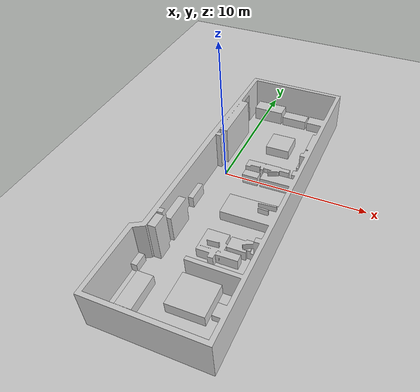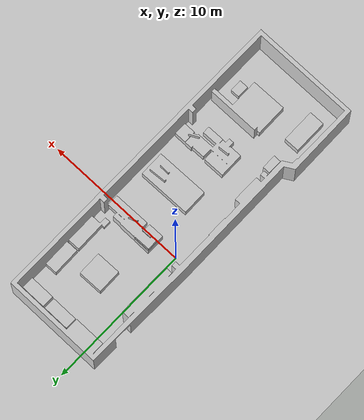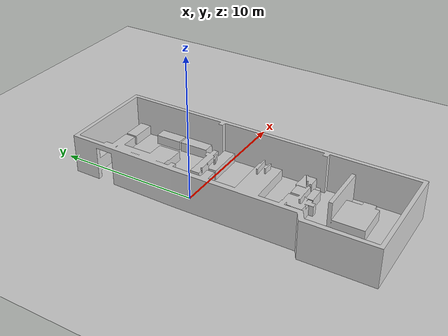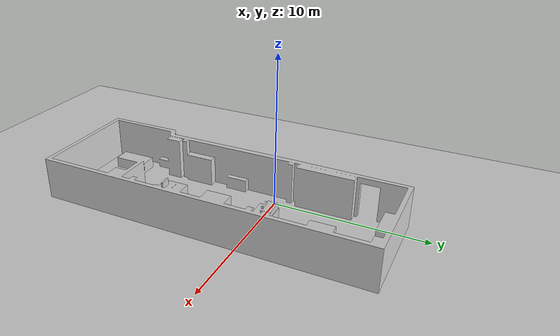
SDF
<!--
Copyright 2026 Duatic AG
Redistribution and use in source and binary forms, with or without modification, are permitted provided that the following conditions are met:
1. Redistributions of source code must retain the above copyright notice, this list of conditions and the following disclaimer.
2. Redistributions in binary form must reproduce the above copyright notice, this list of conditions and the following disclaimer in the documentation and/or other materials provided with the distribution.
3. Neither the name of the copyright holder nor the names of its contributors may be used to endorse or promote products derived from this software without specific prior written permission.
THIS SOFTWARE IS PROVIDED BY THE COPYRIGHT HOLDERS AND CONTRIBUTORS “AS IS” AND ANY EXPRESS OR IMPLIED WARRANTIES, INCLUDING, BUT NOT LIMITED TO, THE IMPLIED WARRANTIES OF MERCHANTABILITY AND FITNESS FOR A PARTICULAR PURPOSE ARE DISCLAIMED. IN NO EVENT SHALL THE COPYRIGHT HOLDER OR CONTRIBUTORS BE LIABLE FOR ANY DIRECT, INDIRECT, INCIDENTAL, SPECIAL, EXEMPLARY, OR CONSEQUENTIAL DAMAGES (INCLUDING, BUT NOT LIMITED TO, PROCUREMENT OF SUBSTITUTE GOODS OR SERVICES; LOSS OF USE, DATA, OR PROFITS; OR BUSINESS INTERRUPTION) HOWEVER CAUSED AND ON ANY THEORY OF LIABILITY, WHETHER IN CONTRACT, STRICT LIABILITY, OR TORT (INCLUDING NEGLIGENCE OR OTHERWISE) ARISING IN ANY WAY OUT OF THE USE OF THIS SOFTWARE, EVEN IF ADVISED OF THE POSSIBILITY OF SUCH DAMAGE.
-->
<?xml version="1.0"?>
<sdf version="1.11">
  <world name="duatic_office">

    <physics name="2ms" type="Bullet">
      <max_step_size>0.002</max_step_size>
      <real_time_factor>1.0</real_time_factor>
      <real_time_update_rate>500</real_time_update_rate>
    </physics>

    <!-- Plugins-->
    <plugin filename="gz-sim-physics-system" name="gz::sim::systems::Physics"></plugin>
    <plugin filename="gz-sim-user-commands-system" name="gz::sim::systems::UserCommands"></plugin>
    <plugin filename="gz-sim-scene-broadcaster-system" name="gz::sim::systems::SceneBroadcaster"></plugin>
    <plugin filename="gz-sim-contact-system" name="gz::sim::systems::Contact"></plugin>

    <!-- Sensor Plugins-->
    <plugin filename="gz-sim-imu-system" name="gz::sim::systems::Imu"></plugin>
    <plugin filename="gz-sim-sensors-system" name="gz::sim::systems::Sensors">
      <render_engine>ogre2</render_engine>
    </plugin>

    <!-- Our office environment, created from a scan with the Oculus Quest 3 -->
    <include>
      <uri>model://duatic_office</uri>
      <pose>2.5 -2 0 0 0 0</pose>
    </include>

    <model name="ground_plane">
      <static>true</static>
        <link name="link">
            <collision name="collision">
                <geometry>
                    <plane>
                        <normal>0 0 1</normal>
                    </plane>
                </geometry>
            </collision>
            <visual name="visual">
                <geometry>
                    <plane>
                        <normal>0 0 1</normal>
                        <size>9 24</size>
                    </plane>
                </geometry>
                <material>
                    <ambient>0.8 0.8 0.8 1</ambient>
                    <diffuse>0.8 0.8 0.8 1</diffuse>
                    <specular>0.8 0.8 0.8 1</specular>
                </material>
            </visual>
        </link>
    </model>

    <!-- Lighting -->
    <light name="light" type="point">
      <pose>0 0 8.5 0 0 0</pose>
      <diffuse>0.5 0.5 0.5 1</diffuse>
      <specular>0.2 0.2 0.2 1</specular>
      <attenuation>
        <range>80</range>
        <constant>0.3</constant>
        <linear>0.01</linear>
        <quadratic>0.001</quadratic>
      </attenuation>
      <cast_shadows>1</cast_shadows>
      <direction>0.1 0.1 -1</direction>
    </light>
  </world>
</sdf>

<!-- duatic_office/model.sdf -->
<sdf version="1.9">
  <model name="duatic_office">
    <link name="link">

      <collision name="collision">
        <geometry>
          <mesh>
            <uri>meshes/duatic_office.stl</uri>
            <scale>1 1 1</scale>
          </mesh>
        </geometry>
        <surface>
          <friction>
            <ode>
              <mu>0.5</mu>
              <mu2>0.5</mu2>
              <fdir1>0 0 0</fdir1>
              <slip1>0</slip1>
              <slip2>0</slip2>
            </ode>
          </friction>
        </surface>
      </collision>

      <visual name="visual">
        <geometry>
          <mesh>
            <uri>meshes/duatic_office.stl</uri>
            <scale>1 1 1</scale>
          </mesh>
        </geometry>

        <material>
          <ambient>0.8 0.8 0.8 1.0</ambient>
          <diffuse>0.8 0.8 0.8 1.0</diffuse>
          <specular>0.1 0.1 0.1 1.0</specular>
        </material>
        <meta> <layer> 2 </layer></meta>
      </visual>
    </link>
    <static>1</static>
  </model>
</sdf>
